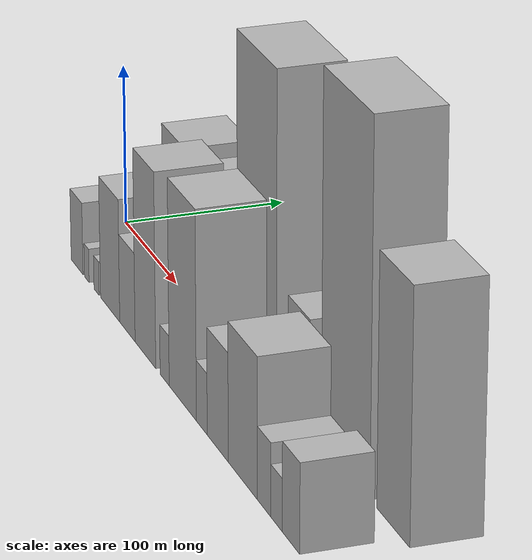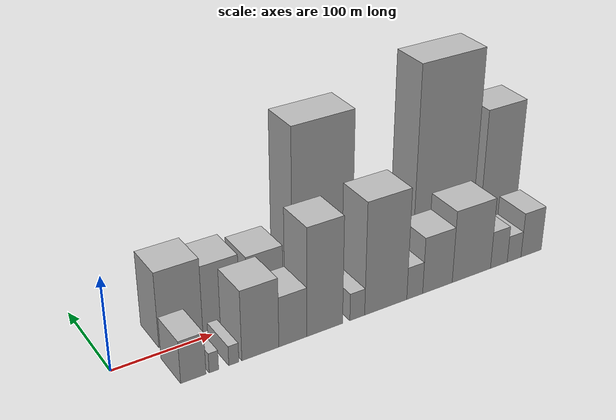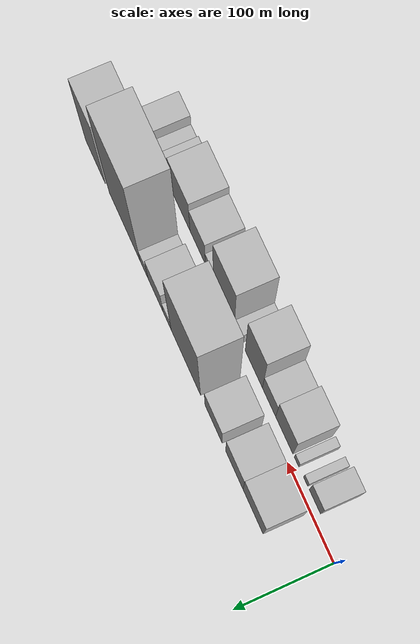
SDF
<sdf version="1.6">
 <world name="default">
  <scene>
   <sky><clouds><speed>12</speed></clouds></sky>
   <ambient>0.4 0.4 0.4 1</ambient>
   <background>0.7 0.7 0.7 1</background>
   <shadows>1</shadows>
  </scene>
  <gravity>0 0 -9.8066</gravity>
  <magnetic_field>6e-06 2.3e-05 -4.2e-05</magnetic_field>
  <physics default="0" name="default_physics" type="ode">
   <ode>
    <solver>
     <type>quick</type>
     <iters>10</iters>
     <sor>1.0</sor>
     <use_dynamic_moi_rescaling>0</use_dynamic_moi_rescaling>
    </solver>
    <constraints>
     <cfm>0</cfm>
     <erp>0.2</erp>
     <contact_max_correcting_vel>100</contact_max_correcting_vel>
     <contact_surface_layer>0.001</contact_surface_layer>
    </constraints>
   </ode>
   <max_step_size>0.004</max_step_size>
   <real_time_factor>1</real_time_factor>
   <real_time_update_rate>250</real_time_update_rate>
  </physics>
  <light name="sun" type="directional">
   <pose>0 0 10 0 0 0</pose>
   <diffuse>0.8 0.8 0.8 1</diffuse>
   <specular>0.2 0.2 0.2 1</specular>
   <attenuation>
    <range>1000</range>
    <constant>0.9</constant>
    <linear>0.01</linear>
    <quadratic>0.001</quadratic>
   </attenuation>
   <direction>-0.5 0.1 -0.9</direction>
  </light>
  <model name="building_1">
   <static>1</static>
   <pose>71.9845 27.5000 0 0.000000 0.000000 1.570796</pose>
   <link name="link">
    <pose>0 0 40.50 0 0 0</pose>
    <collision name="collision"><geometry><box><size>40.0000 43.9691 81.0000</size></box></geometry></collision>
    <visual name="visual">
     <cast_shadows>0</cast_shadows>
     <geometry><box><size>40.0000 43.9691 81.0000</size></box></geometry>
     <material>
      <script>
       <uri>model://HANNAS_wall/materials/scripts</uri>
       <uri>model://HANNAS_wall/materials/textures</uri>
       <name>vrc/HANNAS_wall</name>
      </script>
     </material>
    </visual>
   </link>
  </model>
  <model name="building_2">
   <static>1</static>
   <pose>113.1776 27.5000 0 0.000000 0.000000 1.570796</pose>
   <link name="link">
    <pose>0 0 36.00 0 0 0</pose>
    <collision name="collision"><geometry><box><size>40.0000 38.4171 72.0000</size></box></geometry></collision>
    <visual name="visual">
     <cast_shadows>0</cast_shadows>
     <geometry><box><size>40.0000 38.4171 72.0000</size></box></geometry>
     <material>
      <script>
       <uri>model://HANNAS_wall/materials/scripts</uri>
       <uri>model://HANNAS_wall/materials/textures</uri>
       <name>vrc/HANNAS_wall</name>
      </script>
     </material>
    </visual>
   </link>
  </model>
  <model name="building_3">
   <static>1</static>
   <pose>159.7121 27.5000 0 0.000000 0.000000 1.570796</pose>
   <link name="link">
    <pose>0 0 33.00 0 0 0</pose>
    <collision name="collision"><geometry><box><size>40.0000 38.6519 66.0000</size></box></geometry></collision>
    <visual name="visual">
     <cast_shadows>0</cast_shadows>
     <geometry><box><size>40.0000 38.6519 66.0000</size></box></geometry>
     <material>
      <script>
       <uri>model://HANNAS_wall/materials/scripts</uri>
       <uri>model://HANNAS_wall/materials/textures</uri>
       <name>vrc/HANNAS_wall</name>
      </script>
     </material>
    </visual>
   </link>
  </model>
  <model name="building_4">
   <static>1</static>
   <pose>222.7010 27.5000 0 0.000000 0.000000 1.570796</pose>
   <link name="link">
    <pose>0 0 93.00 0 0 0</pose>
    <collision name="collision"><geometry><box><size>40.0000 67.3258 186.0000</size></box></geometry></collision>
    <visual name="visual">
     <cast_shadows>0</cast_shadows>
     <geometry><box><size>40.0000 67.3258 186.0000</size></box></geometry>
     <material>
      <script>
       <uri>model://HANNAS_wall/materials/scripts</uri>
       <uri>model://HANNAS_wall/materials/textures</uri>
       <name>vrc/HANNAS_wall</name>
      </script>
     </material>
    </visual>
   </link>
  </model>
  <model name="building_5">
   <static>1</static>
   <pose>265.9357 27.5000 0 0.000000 0.000000 1.570796</pose>
   <link name="link">
    <pose>0 0 16.50 0 0 0</pose>
    <collision name="collision"><geometry><box><size>40.0000 19.1436 33.0000</size></box></geometry></collision>
    <visual name="visual">
     <cast_shadows>0</cast_shadows>
     <geometry><box><size>40.0000 19.1436 33.0000</size></box></geometry>
     <material>
      <script>
       <uri>model://HANNAS_wall/materials/scripts</uri>
       <uri>model://HANNAS_wall/materials/textures</uri>
       <name>vrc/HANNAS_wall</name>
      </script>
     </material>
    </visual>
   </link>
  </model>
  <model name="building_6">
   <static>1</static>
   <pose>293.1352 27.5000 0 0.000000 0.000000 1.570796</pose>
   <link name="link">
    <pose>0 0 31.50 0 0 0</pose>
    <collision name="collision"><geometry><box><size>40.0000 35.2554 63.0000</size></box></geometry></collision>
    <visual name="visual">
     <cast_shadows>0</cast_shadows>
     <geometry><box><size>40.0000 35.2554 63.0000</size></box></geometry>
     <material>
      <script>
       <uri>model://HANNAS_wall/materials/scripts</uri>
       <uri>model://HANNAS_wall/materials/textures</uri>
       <name>vrc/HANNAS_wall</name>
      </script>
     </material>
    </visual>
   </link>
  </model>
  <model name="building_7">
   <static>1</static>
   <pose>320.0415 27.5000 0 0.000000 0.000000 1.570796</pose>
   <link name="link">
    <pose>0 0 18.00 0 0 0</pose>
    <collision name="collision"><geometry><box><size>40.0000 18.5571 36.0000</size></box></geometry></collision>
    <visual name="visual">
     <cast_shadows>0</cast_shadows>
     <geometry><box><size>40.0000 18.5571 36.0000</size></box></geometry>
     <material>
      <script>
       <uri>model://HANNAS_wall/materials/scripts</uri>
       <uri>model://HANNAS_wall/materials/textures</uri>
       <name>vrc/HANNAS_wall</name>
      </script>
     </material>
    </visual>
   </link>
  </model>
  <model name="building_8">
   <static>1</static>
   <pose>366.6721 27.5000 0 0.000000 0.000000 1.570796</pose>
   <link name="link">
    <pose>0 0 106.50 0 0 0</pose>
    <collision name="collision"><geometry><box><size>40.0000 74.7041 213.0000</size></box></geometry></collision>
    <visual name="visual">
     <cast_shadows>0</cast_shadows>
     <geometry><box><size>40.0000 74.7041 213.0000</size></box></geometry>
     <material>
      <script>
       <uri>model://HANNAS_wall/materials/scripts</uri>
       <uri>model://HANNAS_wall/materials/textures</uri>
       <name>vrc/HANNAS_wall</name>
      </script>
     </material>
    </visual>
   </link>
  </model>
  <model name="building_9">
   <static>1</static>
   <pose>438.0523 27.5000 0 0.000000 0.000000 1.570796</pose>
   <link name="link">
    <pose>0 0 72.00 0 0 0</pose>
    <collision name="collision"><geometry><box><size>40.0000 48.0562 144.0000</size></box></geometry></collision>
    <visual name="visual">
     <cast_shadows>0</cast_shadows>
     <geometry><box><size>40.0000 48.0562 144.0000</size></box></geometry>
     <material>
      <script>
       <uri>model://HANNAS_wall/materials/scripts</uri>
       <uri>model://HANNAS_wall/materials/textures</uri>
       <name>vrc/HANNAS_wall</name>
      </script>
     </material>
    </visual>
   </link>
  </model>
  <model name="building_10">
   <static>1</static>
   <pose>57.2062 -27.5000 0 0.000000 0.000000 1.570796</pose>
   <link name="link">
    <pose>0 0 22.50 0 0 0</pose>
    <collision name="collision"><geometry><box><size>40.0000 24.4124 45.0000</size></box></geometry></collision>
    <visual name="visual">
     <cast_shadows>0</cast_shadows>
     <geometry><box><size>40.0000 24.4124 45.0000</size></box></geometry>
     <material>
      <script>
       <uri>model://HANNAS_wall/materials/scripts</uri>
       <uri>model://HANNAS_wall/materials/textures</uri>
       <name>vrc/HANNAS_wall</name>
      </script>
     </material>
    </visual>
   </link>
  </model>
  <model name="building_11">
   <static>1</static>
   <pose>77.0801 -27.5000 0 0.000000 0.000000 1.570796</pose>
   <link name="link">
    <pose>0 0 10.50 0 0 0</pose>
    <collision name="collision"><geometry><box><size>40.0000 9.3355 21.0000</size></box></geometry></collision>
    <visual name="visual">
     <cast_shadows>0</cast_shadows>
     <geometry><box><size>40.0000 9.3355 21.0000</size></box></geometry>
     <material>
      <script>
       <uri>model://HANNAS_wall/materials/scripts</uri>
       <uri>model://HANNAS_wall/materials/textures</uri>
       <name>vrc/HANNAS_wall</name>
      </script>
     </material>
    </visual>
   </link>
  </model>
  <model name="building_12">
   <static>1</static>
   <pose>96.7638 -27.5000 0 0.000000 0.000000 1.570796</pose>
   <link name="link">
    <pose>0 0 10.50 0 0 0</pose>
    <collision name="collision"><geometry><box><size>40.0000 10.0319 21.0000</size></box></geometry></collision>
    <visual name="visual">
     <cast_shadows>0</cast_shadows>
     <geometry><box><size>40.0000 10.0319 21.0000</size></box></geometry>
     <material>
      <script>
       <uri>model://HANNAS_wall/materials/scripts</uri>
       <uri>model://HANNAS_wall/materials/textures</uri>
       <name>vrc/HANNAS_wall</name>
      </script>
     </material>
    </visual>
   </link>
  </model>
  <model name="building_13">
   <static>1</static>
   <pose>123.6720 -27.5000 0 0.000000 0.000000 1.570796</pose>
   <link name="link">
    <pose>0 0 37.50 0 0 0</pose>
    <collision name="collision"><geometry><box><size>40.0000 37.7845 75.0000</size></box></geometry></collision>
    <visual name="visual">
     <cast_shadows>0</cast_shadows>
     <geometry><box><size>40.0000 37.7845 75.0000</size></box></geometry>
     <material>
      <script>
       <uri>model://HANNAS_wall/materials/scripts</uri>
       <uri>model://HANNAS_wall/materials/textures</uri>
       <name>vrc/HANNAS_wall</name>
      </script>
     </material>
    </visual>
   </link>
  </model>
  <model name="building_14">
   <static>1</static>
   <pose>157.3034 -27.5000 0 0.000000 0.000000 1.570796</pose>
   <link name="link">
    <pose>0 0 27.00 0 0 0</pose>
    <collision name="collision"><geometry><box><size>40.0000 29.4784 54.0000</size></box></geometry></collision>
    <visual name="visual">
     <cast_shadows>0</cast_shadows>
     <geometry><box><size>40.0000 29.4784 54.0000</size></box></geometry>
     <material>
      <script>
       <uri>model://HANNAS_wall/materials/scripts</uri>
       <uri>model://HANNAS_wall/materials/textures</uri>
       <name>vrc/HANNAS_wall</name>
      </script>
     </material>
    </visual>
   </link>
  </model>
  <model name="building_15">
   <static>1</static>
   <pose>191.3268 -27.5000 0 0.000000 0.000000 1.570796</pose>
   <link name="link">
    <pose>0 0 58.50 0 0 0</pose>
    <collision name="collision"><geometry><box><size>40.0000 38.5685 117.0000</size></box></geometry></collision>
    <visual name="visual">
     <cast_shadows>0</cast_shadows>
     <geometry><box><size>40.0000 38.5685 117.0000</size></box></geometry>
     <material>
      <script>
       <uri>model://HANNAS_wall/materials/scripts</uri>
       <uri>model://HANNAS_wall/materials/textures</uri>
       <name>vrc/HANNAS_wall</name>
      </script>
     </material>
    </visual>
   </link>
  </model>
  <model name="building_16">
   <static>1</static>
   <pose>226.8494 -27.5000 0 0.000000 0.000000 1.570796</pose>
   <link name="link">
    <pose>0 0 15.00 0 0 0</pose>
    <collision name="collision"><geometry><box><size>40.0000 16.4766 30.0000</size></box></geometry></collision>
    <visual name="visual">
     <cast_shadows>0</cast_shadows>
     <geometry><box><size>40.0000 16.4766 30.0000</size></box></geometry>
     <material>
      <script>
       <uri>model://HANNAS_wall/materials/scripts</uri>
       <uri>model://HANNAS_wall/materials/textures</uri>
       <name>vrc/HANNAS_wall</name>
      </script>
     </material>
    </visual>
   </link>
  </model>
  <model name="building_17">
   <static>1</static>
   <pose>259.2063 -27.5000 0 0.000000 0.000000 1.570796</pose>
   <link name="link">
    <pose>0 0 61.50 0 0 0</pose>
    <collision name="collision"><geometry><box><size>40.0000 48.2372 123.0000</size></box></geometry></collision>
    <visual name="visual">
     <cast_shadows>0</cast_shadows>
     <geometry><box><size>40.0000 48.2372 123.0000</size></box></geometry>
     <material>
      <script>
       <uri>model://HANNAS_wall/materials/scripts</uri>
       <uri>model://HANNAS_wall/materials/textures</uri>
       <name>vrc/HANNAS_wall</name>
      </script>
     </material>
    </visual>
   </link>
  </model>
  <model name="building_18">
   <static>1</static>
   <pose>292.6474 -27.5000 0 0.000000 0.000000 1.570796</pose>
   <link name="link">
    <pose>0 0 18.00 0 0 0</pose>
    <collision name="collision"><geometry><box><size>40.0000 18.6450 36.0000</size></box></geometry></collision>
    <visual name="visual">
     <cast_shadows>0</cast_shadows>
     <geometry><box><size>40.0000 18.6450 36.0000</size></box></geometry>
     <material>
      <script>
       <uri>model://HANNAS_wall/materials/scripts</uri>
       <uri>model://HANNAS_wall/materials/textures</uri>
       <name>vrc/HANNAS_wall</name>
      </script>
     </material>
    </visual>
   </link>
  </model>
  <model name="building_19">
   <static>1</static>
   <pose>319.7411 -27.5000 0 0.000000 0.000000 1.570796</pose>
   <link name="link">
    <pose>0 0 31.50 0 0 0</pose>
    <collision name="collision"><geometry><box><size>40.0000 35.5424 63.0000</size></box></geometry></collision>
    <visual name="visual">
     <cast_shadows>0</cast_shadows>
     <geometry><box><size>40.0000 35.5424 63.0000</size></box></geometry>
     <material>
      <script>
       <uri>model://HANNAS_wall/materials/scripts</uri>
       <uri>model://HANNAS_wall/materials/textures</uri>
       <name>vrc/HANNAS_wall</name>
      </script>
     </material>
    </visual>
   </link>
  </model>
  <model name="building_20">
   <static>1</static>
   <pose>361.3145 -27.5000 0 0.000000 0.000000 1.570796</pose>
   <link name="link">
    <pose>0 0 40.50 0 0 0</pose>
    <collision name="collision"><geometry><box><size>40.0000 47.6045 81.0000</size></box></geometry></collision>
    <visual name="visual">
     <cast_shadows>0</cast_shadows>
     <geometry><box><size>40.0000 47.6045 81.0000</size></box></geometry>
     <material>
      <script>
       <uri>model://HANNAS_wall/materials/scripts</uri>
       <uri>model://HANNAS_wall/materials/textures</uri>
       <name>vrc/HANNAS_wall</name>
      </script>
     </material>
    </visual>
   </link>
  </model>
  <model name="building_21">
   <static>1</static>
   <pose>395.7867 -27.5000 0 0.000000 0.000000 1.570796</pose>
   <link name="link">
    <pose>0 0 21.00 0 0 0</pose>
    <collision name="collision"><geometry><box><size>40.0000 21.3398 42.0000</size></box></geometry></collision>
    <visual name="visual">
     <cast_shadows>0</cast_shadows>
     <geometry><box><size>40.0000 21.3398 42.0000</size></box></geometry>
     <material>
      <script>
       <uri>model://HANNAS_wall/materials/scripts</uri>
       <uri>model://HANNAS_wall/materials/textures</uri>
       <name>vrc/HANNAS_wall</name>
      </script>
     </material>
    </visual>
   </link>
  </model>
  <model name="building_22">
   <static>1</static>
   <pose>415.3891 -27.5000 0 0.000000 0.000000 1.570796</pose>
   <link name="link">
    <pose>0 0 15.00 0 0 0</pose>
    <collision name="collision"><geometry><box><size>40.0000 17.8650 30.0000</size></box></geometry></collision>
    <visual name="visual">
     <cast_shadows>0</cast_shadows>
     <geometry><box><size>40.0000 17.8650 30.0000</size></box></geometry>
     <material>
      <script>
       <uri>model://HANNAS_wall/materials/scripts</uri>
       <uri>model://HANNAS_wall/materials/textures</uri>
       <name>vrc/HANNAS_wall</name>
      </script>
     </material>
    </visual>
   </link>
  </model>
  <model name="building_23">
   <static>1</static>
   <pose>437.6659 -27.5000 0 0.000000 0.000000 1.570796</pose>
   <link name="link">
    <pose>0 0 25.50 0 0 0</pose>
    <collision name="collision"><geometry><box><size>40.0000 26.6887 51.0000</size></box></geometry></collision>
    <visual name="visual">
     <cast_shadows>0</cast_shadows>
     <geometry><box><size>40.0000 26.6887 51.0000</size></box></geometry>
     <material>
      <script>
       <uri>model://HANNAS_wall/materials/scripts</uri>
       <uri>model://HANNAS_wall/materials/textures</uri>
       <name>vrc/HANNAS_wall</name>
      </script>
     </material>
    </visual>
   </link>
  </model>
 </world>
</sdf>
